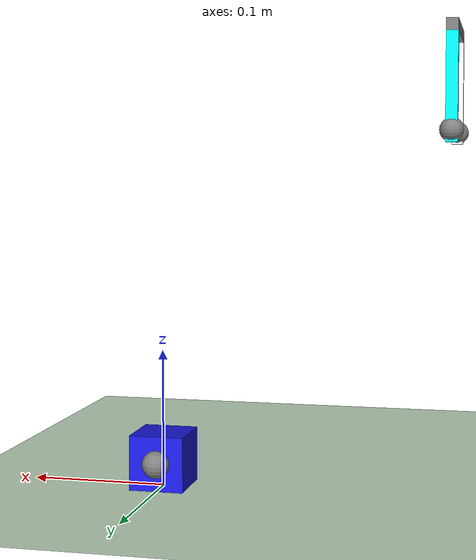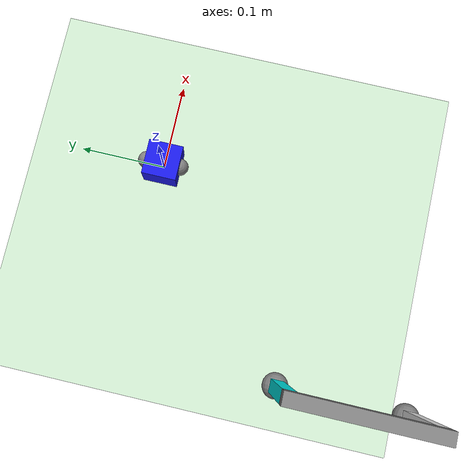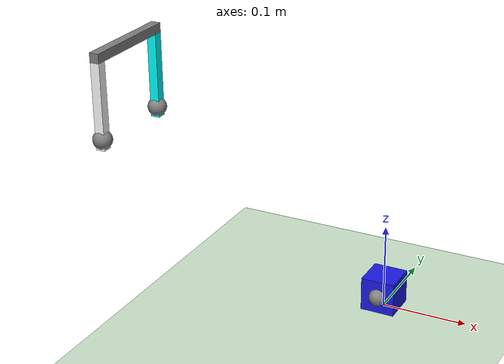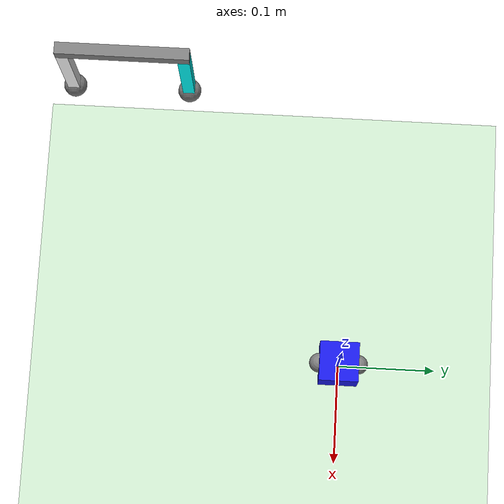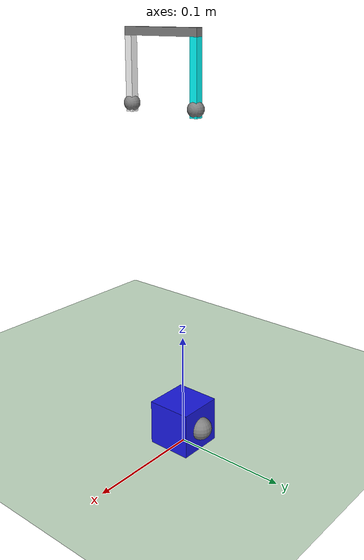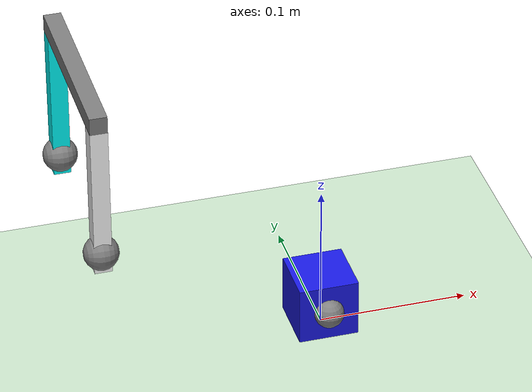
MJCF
<mujoco model="gripper">
    <compiler angle="radian" meshdir="meshes/" />
    <!--option gravity="0 0 -9.8" /-->
    <option integrator="RK4" timestep="0.01" iterations="50"/>
    <size njmax="500" nconmax="100" />

    <visual>
        <headlight ambient="0.5 0.5 0.5"  />
    </visual>

    <asset>

        <texture name="texplane" type="2d" builtin="checker" rgb1="0 0 0" rgb2="0.8 0.8 0.8" width="100" height="100" />
        <material name='MatPlane' texture="texplane" shininess="1" texrepeat="50 50" specular="1"  reflectance="0.1" />

    </asset>

    <default>
        <!--joint limited="true" damping="1" stiffness="0" armature=".1" user="0"/-->
        <geom solref="0.008 1" solimp="0.95 0.95 0.01" margin="0.001" user="0"/>
        <motor ctrllimited="true" ctrlrange="-1 1"/>
        <position ctrllimited="true"/>

        <default class='0'>
            <geom friction="1 0.005 0.001" rgba=".75 .6 .5 1" contype="1" conaffinity="0"/>
        </default>

        <default class='1'>
            <geom friction="1 0.005 0.001" rgba=".7 .6 .55 1" contype="1" conaffinity="1"/>
        </default>

    </default>

    <worldbody>
        <geom name='floor' material="MatPlane" pos='0 0 0' size='4 4 4' type='plane' conaffinity='1' rgba='0.8 0.9 0.8 1' condim='3' />

<!--  ================= BEGIN GRIPPER ================= /-->

        <body name="claw" pos="-0.2 -0.2 0.3" quat="1 0 1 0">

            <geom name="rail" type="box" pos="-0.05 0 0" size="0.005 0.055 0.005" friction="0.001 0.005 0.0001" rgba="0.5 0.5 0.5 1.0"/>

            <joint name="slidex" type="slide" pos="0 0 0" axis="1 0 0" range= "-0.5 0.5" limited="true"/>

            <joint name="slidey" type="slide" pos="0 0 0" axis="0 1 0" range= "-0.5 0.5" limited="true"/>
            <joint name="slidez" type="slide" pos="0 0 0" axis="0 0 1" range= "-0.5 0.5" limited="true"/>

            <body name="rightclaw" pos="0 -0.05 0" >
                <geom name="rightclaw_it" class="1" type="box" pos="0 0 0" size="0.045 0.005 0.005" friction="0.001 0.005 0.0001" rgba="1.0 1.0 1.0 1.0"/>
                <site name="rightEndeffector" pos="0.035 0 0" size="0.01" />

                <joint name="r_close" type="slide" pos="0 0 0" axis="0 1 0" range= "0 0.04"    limited="true"/>
            </body>

            <body name="leftclaw" pos="0 0.05 0">
                <geom name="leftclaw_it" class="1" type="box" pos="0 0 0" size="0.045 0.005 0.005" friction="0.001 0.005 0.0001" rgba="0.0 1.0 1.0 1.0"/>
                <site name="leftEndeffector" pos="0.035 0 0" size="0.01" />

                <joint name="l_close" type="slide" pos="0 0 0" axis="0 1 0" range= "-0.04 0"  limited="true"/>

            </body>
        </body>

<!--  ================= END GRIPPER ================= /-->

        <body name="block" pos="0 0 0.02">
            <joint name="blockjoint" type="free" limited='false' damping="0" armature="0" />

            <inertial pos="0 0 0" mass=".05" diaginertia="100000 100000 100000"/>
            <geom name="blockbox" type="box" pos="0 0 0"
                  size="0.02 0.02 0.02" rgba=".1 .1 .9 1" contype="1" conaffinity="1"
            />

            <site name="blockRight" pos="0 0.02 0" size="0.01" />
            <site name="blockLeft" pos="0 -0.02 0" size="0.01" />

        </body>

    </worldbody>

    <actuator>

        <motor gear="2" joint="slidex" ctrllimited="true" ctrlrange="-1 1.2"/>

        <motor gear="2" joint="slidey" ctrllimited="true" ctrlrange="-1 1"/>
        <motor gear="2" joint="slidez" ctrllimited="true" ctrlrange="-1 1"/>

        <motor gear="2" joint="r_close" ctrllimited="true" ctrlrange="-1 1"/>
        <motor gear="2" joint="l_close" ctrllimited="true" ctrlrange="-1 1"/>

    </actuator>

</mujoco>
